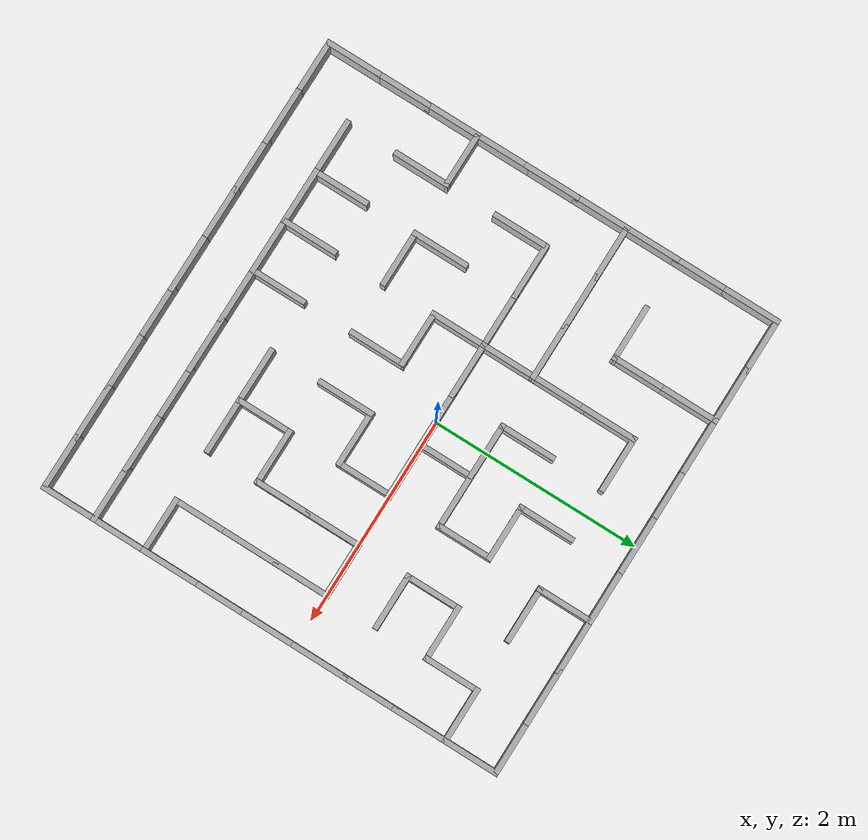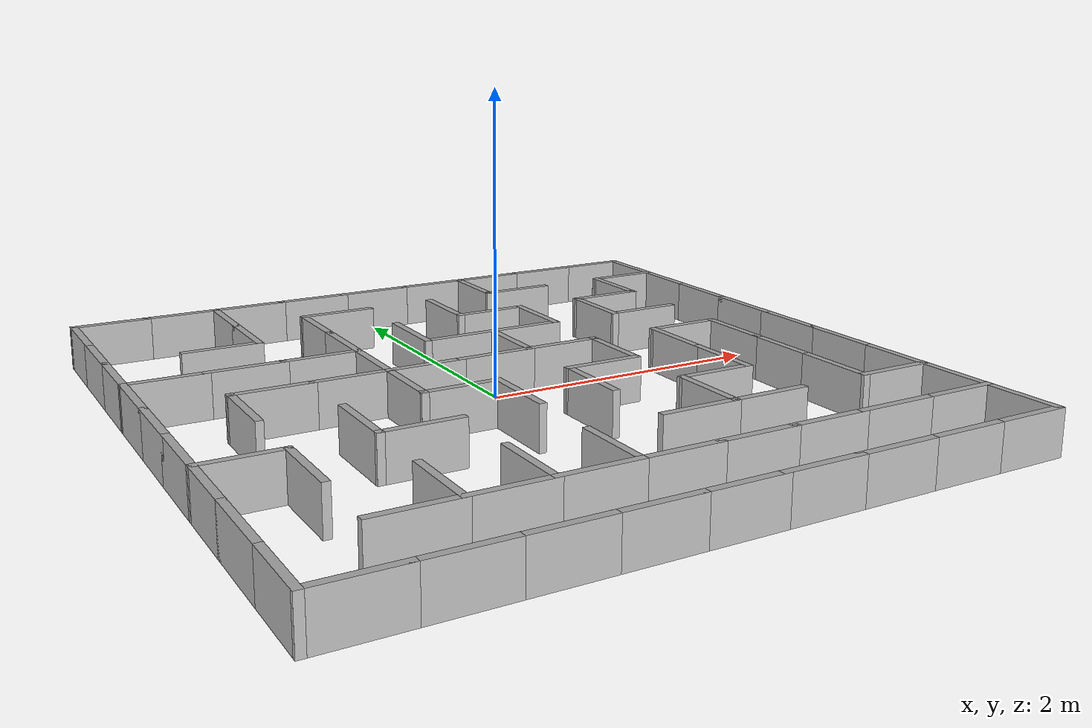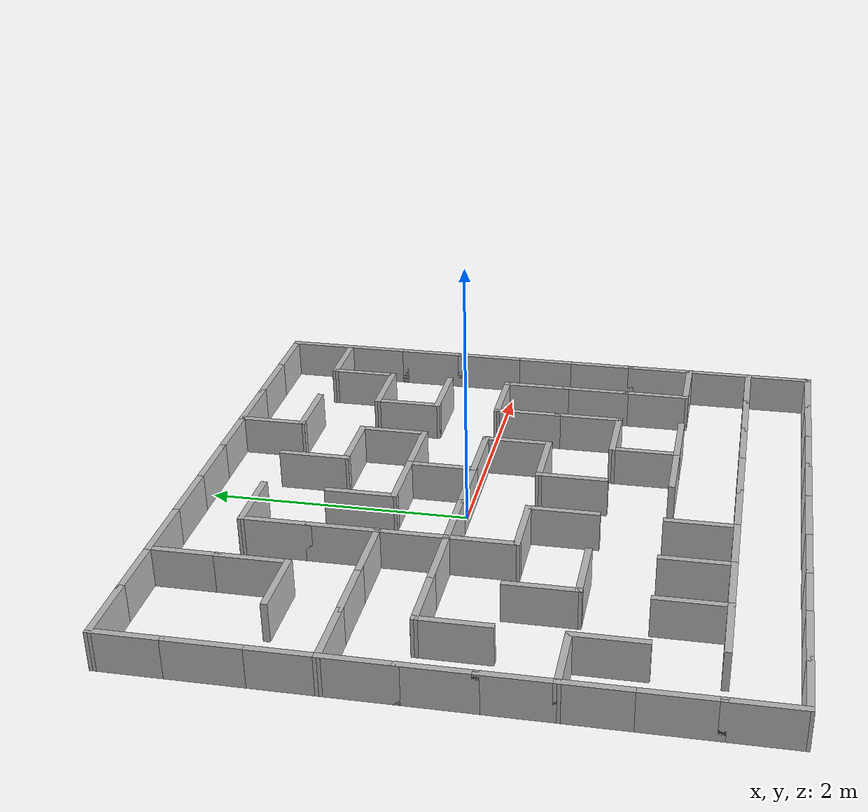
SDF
<?xml version='1.0'?>
<sdf version='1.4'>
	<model name="my_maze">
		<static>true</static>

		<link name='wall1'>
			<pose>-2.25 -2.25 0.15 0 0 0</pose>
			<inertial>
				<mass>1.0</mass>
			</inertial>
			<collision name='collision'>
				<geometry>
					<box>
						<size>0.05 0.55 0.3</size>
					</box>
				</geometry>
			</collision>
			<visual name='visual'>
				<geometry>
					<box>
						<size>0.05 0.55 0.3</size>
					</box>
				</geometry>
			</visual>
		</link>

		<link name='wall2'>
			<pose>-2 -2.5 0.15 0 0 1.57</pose>
			<inertial>
				<mass>1.0</mass>
			</inertial>
			<collision name='collision'>
				<geometry>
					<box>
						<size>0.05 0.55 0.3</size>
					</box>
				</geometry>
			</collision>
			<visual name='visual'>
				<geometry>
					<box>
						<size>0.05 0.55 0.3</size>
					</box>
				</geometry>
			</visual>
		</link>

		<link name='wall3'>
			<pose>-2.25 -1.75 0.15 0 0 0</pose>
			<inertial>
				<mass>1.0</mass>
			</inertial>
			<collision name='collision'>
				<geometry>
					<box>
						<size>0.05 0.55 0.3</size>
					</box>
				</geometry>
			</collision>
			<visual name='visual'>
				<geometry>
					<box>
						<size>0.05 0.55 0.3</size>
					</box>
				</geometry>
			</visual>
		</link>

		<link name='wall4'>
			<pose>-2.25 -1.25 0.15 0 0 0</pose>
			<inertial>
				<mass>1.0</mass>
			</inertial>
			<collision name='collision'>
				<geometry>
					<box>
						<size>0.05 0.55 0.3</size>
					</box>
				</geometry>
			</collision>
			<visual name='visual'>
				<geometry>
					<box>
						<size>0.05 0.55 0.3</size>
					</box>
				</geometry>
			</visual>
		</link>

		<link name='wall5'>
			<pose>-2.25 -0.75 0.15 0 0 0</pose>
			<inertial>
				<mass>1.0</mass>
			</inertial>
			<collision name='collision'>
				<geometry>
					<box>
						<size>0.05 0.55 0.3</size>
					</box>
				</geometry>
			</collision>
			<visual name='visual'>
				<geometry>
					<box>
						<size>0.05 0.55 0.3</size>
					</box>
				</geometry>
			</visual>
		</link>

		<link name='wall6'>
			<pose>-2 -1 0.15 0 0 1.57</pose>
			<inertial>
				<mass>1.0</mass>
			</inertial>
			<collision name='collision'>
				<geometry>
					<box>
						<size>0.05 0.55 0.3</size>
					</box>
				</geometry>
			</collision>
			<visual name='visual'>
				<geometry>
					<box>
						<size>0.05 0.55 0.3</size>
					</box>
				</geometry>
			</visual>
		</link>

		<link name='wall7'>
			<pose>-2.25 -0.25 0.15 0 0 0</pose>
			<inertial>
				<mass>1.0</mass>
			</inertial>
			<collision name='collision'>
				<geometry>
					<box>
						<size>0.05 0.55 0.3</size>
					</box>
				</geometry>
			</collision>
			<visual name='visual'>
				<geometry>
					<box>
						<size>0.05 0.55 0.3</size>
					</box>
				</geometry>
			</visual>
		</link>

		<link name='wall8'>
			<pose>-2.25 0.25 0.15 0 0 0</pose>
			<inertial>
				<mass>1.0</mass>
			</inertial>
			<collision name='collision'>
				<geometry>
					<box>
						<size>0.05 0.55 0.3</size>
					</box>
				</geometry>
			</collision>
			<visual name='visual'>
				<geometry>
					<box>
						<size>0.05 0.55 0.3</size>
					</box>
				</geometry>
			</visual>
		</link>

		<link name='wall9'>
			<pose>-2.25 0.75 0.15 0 0 0</pose>
			<inertial>
				<mass>1.0</mass>
			</inertial>
			<collision name='collision'>
				<geometry>
					<box>
						<size>0.05 0.55 0.3</size>
					</box>
				</geometry>
			</collision>
			<visual name='visual'>
				<geometry>
					<box>
						<size>0.05 0.55 0.3</size>
					</box>
				</geometry>
			</visual>
		</link>

		<link name='wall10'>
			<pose>-2 0.5 0.15 0 0 1.57</pose>
			<inertial>
				<mass>1.0</mass>
			</inertial>
			<collision name='collision'>
				<geometry>
					<box>
						<size>0.05 0.55 0.3</size>
					</box>
				</geometry>
			</collision>
			<visual name='visual'>
				<geometry>
					<box>
						<size>0.05 0.55 0.3</size>
					</box>
				</geometry>
			</visual>
		</link>

		<link name='wall11'>
			<pose>-2.25 1.25 0.15 0 0 0</pose>
			<inertial>
				<mass>1.0</mass>
			</inertial>
			<collision name='collision'>
				<geometry>
					<box>
						<size>0.05 0.55 0.3</size>
					</box>
				</geometry>
			</collision>
			<visual name='visual'>
				<geometry>
					<box>
						<size>0.05 0.55 0.3</size>
					</box>
				</geometry>
			</visual>
		</link>

		<link name='wall12'>
			<pose>-2.25 1.75 0.15 0 0 0</pose>
			<inertial>
				<mass>1.0</mass>
			</inertial>
			<collision name='collision'>
				<geometry>
					<box>
						<size>0.05 0.55 0.3</size>
					</box>
				</geometry>
			</collision>
			<visual name='visual'>
				<geometry>
					<box>
						<size>0.05 0.55 0.3</size>
					</box>
				</geometry>
			</visual>
		</link>

		<link name='wall13'>
			<pose>-2 2 0.15 0 0 1.57</pose>
			<inertial>
				<mass>1.0</mass>
			</inertial>
			<collision name='collision'>
				<geometry>
					<box>
						<size>0.05 0.55 0.3</size>
					</box>
				</geometry>
			</collision>
			<visual name='visual'>
				<geometry>
					<box>
						<size>0.05 0.55 0.3</size>
					</box>
				</geometry>
			</visual>
		</link>

		<link name='wall14'>
			<pose>-1.5 -2.5 0.15 0 0 1.57</pose>
			<inertial>
				<mass>1.0</mass>
			</inertial>
			<collision name='collision'>
				<geometry>
					<box>
						<size>0.05 0.55 0.3</size>
					</box>
				</geometry>
			</collision>
			<visual name='visual'>
				<geometry>
					<box>
						<size>0.05 0.55 0.3</size>
					</box>
				</geometry>
			</visual>
		</link>

		<link name='wall15'>
			<pose>-1.5 -2 0.15 0 0 1.57</pose>
			<inertial>
				<mass>1.0</mass>
			</inertial>
			<collision name='collision'>
				<geometry>
					<box>
						<size>0.05 0.55 0.3</size>
					</box>
				</geometry>
			</collision>
			<visual name='visual'>
				<geometry>
					<box>
						<size>0.05 0.55 0.3</size>
					</box>
				</geometry>
			</visual>
		</link>

		<link name='wall16'>
			<pose>-1.75 -1.25 0.15 0 0 0</pose>
			<inertial>
				<mass>1.0</mass>
			</inertial>
			<collision name='collision'>
				<geometry>
					<box>
						<size>0.05 0.55 0.3</size>
					</box>
				</geometry>
			</collision>
			<visual name='visual'>
				<geometry>
					<box>
						<size>0.05 0.55 0.3</size>
					</box>
				</geometry>
			</visual>
		</link>

		<link name='wall17'>
			<pose>-1.75 -0.25 0.15 0 0 0</pose>
			<inertial>
				<mass>1.0</mass>
			</inertial>
			<collision name='collision'>
				<geometry>
					<box>
						<size>0.05 0.55 0.3</size>
					</box>
				</geometry>
			</collision>
			<visual name='visual'>
				<geometry>
					<box>
						<size>0.05 0.55 0.3</size>
					</box>
				</geometry>
			</visual>
		</link>

		<link name='wall18'>
			<pose>-1.5 0 0.15 0 0 1.57</pose>
			<inertial>
				<mass>1.0</mass>
			</inertial>
			<collision name='collision'>
				<geometry>
					<box>
						<size>0.05 0.55 0.3</size>
					</box>
				</geometry>
			</collision>
			<visual name='visual'>
				<geometry>
					<box>
						<size>0.05 0.55 0.3</size>
					</box>
				</geometry>
			</visual>
		</link>

		<link name='wall19'>
			<pose>-1.5 0.5 0.15 0 0 1.57</pose>
			<inertial>
				<mass>1.0</mass>
			</inertial>
			<collision name='collision'>
				<geometry>
					<box>
						<size>0.05 0.55 0.3</size>
					</box>
				</geometry>
			</collision>
			<visual name='visual'>
				<geometry>
					<box>
						<size>0.05 0.55 0.3</size>
					</box>
				</geometry>
			</visual>
		</link>

		<link name='wall20'>
			<pose>-1.5 1 0.15 0 0 1.57</pose>
			<inertial>
				<mass>1.0</mass>
			</inertial>
			<collision name='collision'>
				<geometry>
					<box>
						<size>0.05 0.55 0.3</size>
					</box>
				</geometry>
			</collision>
			<visual name='visual'>
				<geometry>
					<box>
						<size>0.05 0.55 0.3</size>
					</box>
				</geometry>
			</visual>
		</link>

		<link name='wall21'>
			<pose>-1.5 2 0.15 0 0 1.57</pose>
			<inertial>
				<mass>1.0</mass>
			</inertial>
			<collision name='collision'>
				<geometry>
					<box>
						<size>0.05 0.55 0.3</size>
					</box>
				</geometry>
			</collision>
			<visual name='visual'>
				<geometry>
					<box>
						<size>0.05 0.55 0.3</size>
					</box>
				</geometry>
			</visual>
		</link>

		<link name='wall22'>
			<pose>-1 -2.5 0.15 0 0 1.57</pose>
			<inertial>
				<mass>1.0</mass>
			</inertial>
			<collision name='collision'>
				<geometry>
					<box>
						<size>0.05 0.55 0.3</size>
					</box>
				</geometry>
			</collision>
			<visual name='visual'>
				<geometry>
					<box>
						<size>0.05 0.55 0.3</size>
					</box>
				</geometry>
			</visual>
		</link>

		<link name='wall23'>
			<pose>-1.25 -1.75 0.15 0 0 0</pose>
			<inertial>
				<mass>1.0</mass>
			</inertial>
			<collision name='collision'>
				<geometry>
					<box>
						<size>0.05 0.55 0.3</size>
					</box>
				</geometry>
			</collision>
			<visual name='visual'>
				<geometry>
					<box>
						<size>0.05 0.55 0.3</size>
					</box>
				</geometry>
			</visual>
		</link>

		<link name='wall24'>
			<pose>-1 -2 0.15 0 0 1.57</pose>
			<inertial>
				<mass>1.0</mass>
			</inertial>
			<collision name='collision'>
				<geometry>
					<box>
						<size>0.05 0.55 0.3</size>
					</box>
				</geometry>
			</collision>
			<visual name='visual'>
				<geometry>
					<box>
						<size>0.05 0.55 0.3</size>
					</box>
				</geometry>
			</visual>
		</link>

		<link name='wall25'>
			<pose>-1.25 -0.75 0.15 0 0 0</pose>
			<inertial>
				<mass>1.0</mass>
			</inertial>
			<collision name='collision'>
				<geometry>
					<box>
						<size>0.05 0.55 0.3</size>
					</box>
				</geometry>
			</collision>
			<visual name='visual'>
				<geometry>
					<box>
						<size>0.05 0.55 0.3</size>
					</box>
				</geometry>
			</visual>
		</link>

		<link name='wall26'>
			<pose>-1 -1 0.15 0 0 1.57</pose>
			<inertial>
				<mass>1.0</mass>
			</inertial>
			<collision name='collision'>
				<geometry>
					<box>
						<size>0.05 0.55 0.3</size>
					</box>
				</geometry>
			</collision>
			<visual name='visual'>
				<geometry>
					<box>
						<size>0.05 0.55 0.3</size>
					</box>
				</geometry>
			</visual>
		</link>

		<link name='wall27'>
			<pose>-1 0 0.15 0 0 1.57</pose>
			<inertial>
				<mass>1.0</mass>
			</inertial>
			<collision name='collision'>
				<geometry>
					<box>
						<size>0.05 0.55 0.3</size>
					</box>
				</geometry>
			</collision>
			<visual name='visual'>
				<geometry>
					<box>
						<size>0.05 0.55 0.3</size>
					</box>
				</geometry>
			</visual>
		</link>

		<link name='wall28'>
			<pose>-1 0.5 0.15 0 0 1.57</pose>
			<inertial>
				<mass>1.0</mass>
			</inertial>
			<collision name='collision'>
				<geometry>
					<box>
						<size>0.05 0.55 0.3</size>
					</box>
				</geometry>
			</collision>
			<visual name='visual'>
				<geometry>
					<box>
						<size>0.05 0.55 0.3</size>
					</box>
				</geometry>
			</visual>
		</link>

		<link name='wall29'>
			<pose>-1.25 1.25 0.15 0 0 0</pose>
			<inertial>
				<mass>1.0</mass>
			</inertial>
			<collision name='collision'>
				<geometry>
					<box>
						<size>0.05 0.55 0.3</size>
					</box>
				</geometry>
			</collision>
			<visual name='visual'>
				<geometry>
					<box>
						<size>0.05 0.55 0.3</size>
					</box>
				</geometry>
			</visual>
		</link>

		<link name='wall30'>
			<pose>-1.25 1.75 0.15 0 0 0</pose>
			<inertial>
				<mass>1.0</mass>
			</inertial>
			<collision name='collision'>
				<geometry>
					<box>
						<size>0.05 0.55 0.3</size>
					</box>
				</geometry>
			</collision>
			<visual name='visual'>
				<geometry>
					<box>
						<size>0.05 0.55 0.3</size>
					</box>
				</geometry>
			</visual>
		</link>

		<link name='wall31'>
			<pose>-1 2 0.15 0 0 1.57</pose>
			<inertial>
				<mass>1.0</mass>
			</inertial>
			<collision name='collision'>
				<geometry>
					<box>
						<size>0.05 0.55 0.3</size>
					</box>
				</geometry>
			</collision>
			<visual name='visual'>
				<geometry>
					<box>
						<size>0.05 0.55 0.3</size>
					</box>
				</geometry>
			</visual>
		</link>

		<link name='wall32'>
			<pose>-0.5 -2.5 0.15 0 0 1.57</pose>
			<inertial>
				<mass>1.0</mass>
			</inertial>
			<collision name='collision'>
				<geometry>
					<box>
						<size>0.05 0.55 0.3</size>
					</box>
				</geometry>
			</collision>
			<visual name='visual'>
				<geometry>
					<box>
						<size>0.05 0.55 0.3</size>
					</box>
				</geometry>
			</visual>
		</link>

		<link name='wall33'>
			<pose>-0.75 -1.75 0.15 0 0 0</pose>
			<inertial>
				<mass>1.0</mass>
			</inertial>
			<collision name='collision'>
				<geometry>
					<box>
						<size>0.05 0.55 0.3</size>
					</box>
				</geometry>
			</collision>
			<visual name='visual'>
				<geometry>
					<box>
						<size>0.05 0.55 0.3</size>
					</box>
				</geometry>
			</visual>
		</link>

		<link name='wall34'>
			<pose>-0.5 -2 0.15 0 0 1.57</pose>
			<inertial>
				<mass>1.0</mass>
			</inertial>
			<collision name='collision'>
				<geometry>
					<box>
						<size>0.05 0.55 0.3</size>
					</box>
				</geometry>
			</collision>
			<visual name='visual'>
				<geometry>
					<box>
						<size>0.05 0.55 0.3</size>
					</box>
				</geometry>
			</visual>
		</link>

		<link name='wall35'>
			<pose>-0.75 -0.25 0.15 0 0 0</pose>
			<inertial>
				<mass>1.0</mass>
			</inertial>
			<collision name='collision'>
				<geometry>
					<box>
						<size>0.05 0.55 0.3</size>
					</box>
				</geometry>
			</collision>
			<visual name='visual'>
				<geometry>
					<box>
						<size>0.05 0.55 0.3</size>
					</box>
				</geometry>
			</visual>
		</link>

		<link name='wall36'>
			<pose>-0.5 -0.5 0.15 0 0 1.57</pose>
			<inertial>
				<mass>1.0</mass>
			</inertial>
			<collision name='collision'>
				<geometry>
					<box>
						<size>0.05 0.55 0.3</size>
					</box>
				</geometry>
			</collision>
			<visual name='visual'>
				<geometry>
					<box>
						<size>0.05 0.55 0.3</size>
					</box>
				</geometry>
			</visual>
		</link>

		<link name='wall37'>
			<pose>-0.75 0.25 0.15 0 0 0</pose>
			<inertial>
				<mass>1.0</mass>
			</inertial>
			<collision name='collision'>
				<geometry>
					<box>
						<size>0.05 0.55 0.3</size>
					</box>
				</geometry>
			</collision>
			<visual name='visual'>
				<geometry>
					<box>
						<size>0.05 0.55 0.3</size>
					</box>
				</geometry>
			</visual>
		</link>

		<link name='wall38'>
			<pose>-0.5 0 0.15 0 0 1.57</pose>
			<inertial>
				<mass>1.0</mass>
			</inertial>
			<collision name='collision'>
				<geometry>
					<box>
						<size>0.05 0.55 0.3</size>
					</box>
				</geometry>
			</collision>
			<visual name='visual'>
				<geometry>
					<box>
						<size>0.05 0.55 0.3</size>
					</box>
				</geometry>
			</visual>
		</link>

		<link name='wall39'>
			<pose>-0.75 0.75 0.15 0 0 0</pose>
			<inertial>
				<mass>1.0</mass>
			</inertial>
			<collision name='collision'>
				<geometry>
					<box>
						<size>0.05 0.55 0.3</size>
					</box>
				</geometry>
			</collision>
			<visual name='visual'>
				<geometry>
					<box>
						<size>0.05 0.55 0.3</size>
					</box>
				</geometry>
			</visual>
		</link>

		<link name='wall40'>
			<pose>-0.75 1.25 0.15 0 0 0</pose>
			<inertial>
				<mass>1.0</mass>
			</inertial>
			<collision name='collision'>
				<geometry>
					<box>
						<size>0.05 0.55 0.3</size>
					</box>
				</geometry>
			</collision>
			<visual name='visual'>
				<geometry>
					<box>
						<size>0.05 0.55 0.3</size>
					</box>
				</geometry>
			</visual>
		</link>

		<link name='wall41'>
			<pose>-0.5 1.5 0.15 0 0 1.57</pose>
			<inertial>
				<mass>1.0</mass>
			</inertial>
			<collision name='collision'>
				<geometry>
					<box>
						<size>0.05 0.55 0.3</size>
					</box>
				</geometry>
			</collision>
			<visual name='visual'>
				<geometry>
					<box>
						<size>0.05 0.55 0.3</size>
					</box>
				</geometry>
			</visual>
		</link>

		<link name='wall42'>
			<pose>-0.5 2 0.15 0 0 1.57</pose>
			<inertial>
				<mass>1.0</mass>
			</inertial>
			<collision name='collision'>
				<geometry>
					<box>
						<size>0.05 0.55 0.3</size>
					</box>
				</geometry>
			</collision>
			<visual name='visual'>
				<geometry>
					<box>
						<size>0.05 0.55 0.3</size>
					</box>
				</geometry>
			</visual>
		</link>

		<link name='wall43'>
			<pose>0 -2.5 0.15 0 0 1.57</pose>
			<inertial>
				<mass>1.0</mass>
			</inertial>
			<collision name='collision'>
				<geometry>
					<box>
						<size>0.05 0.55 0.3</size>
					</box>
				</geometry>
			</collision>
			<visual name='visual'>
				<geometry>
					<box>
						<size>0.05 0.55 0.3</size>
					</box>
				</geometry>
			</visual>
		</link>

		<link name='wall44'>
			<pose>-0.25 -1.75 0.15 0 0 0</pose>
			<inertial>
				<mass>1.0</mass>
			</inertial>
			<collision name='collision'>
				<geometry>
					<box>
						<size>0.05 0.55 0.3</size>
					</box>
				</geometry>
			</collision>
			<visual name='visual'>
				<geometry>
					<box>
						<size>0.05 0.55 0.3</size>
					</box>
				</geometry>
			</visual>
		</link>

		<link name='wall45'>
			<pose>0 -2 0.15 0 0 1.57</pose>
			<inertial>
				<mass>1.0</mass>
			</inertial>
			<collision name='collision'>
				<geometry>
					<box>
						<size>0.05 0.55 0.3</size>
					</box>
				</geometry>
			</collision>
			<visual name='visual'>
				<geometry>
					<box>
						<size>0.05 0.55 0.3</size>
					</box>
				</geometry>
			</visual>
		</link>

		<link name='wall46'>
			<pose>-0.25 -0.75 0.15 0 0 0</pose>
			<inertial>
				<mass>1.0</mass>
			</inertial>
			<collision name='collision'>
				<geometry>
					<box>
						<size>0.05 0.55 0.3</size>
					</box>
				</geometry>
			</collision>
			<visual name='visual'>
				<geometry>
					<box>
						<size>0.05 0.55 0.3</size>
					</box>
				</geometry>
			</visual>
		</link>

		<link name='wall47'>
			<pose>0 0 0.15 0 0 1.57</pose>
			<inertial>
				<mass>1.0</mass>
			</inertial>
			<collision name='collision'>
				<geometry>
					<box>
						<size>0.05 0.55 0.3</size>
					</box>
				</geometry>
			</collision>
			<visual name='visual'>
				<geometry>
					<box>
						<size>0.05 0.55 0.3</size>
					</box>
				</geometry>
			</visual>
		</link>

		<link name='wall48'>
			<pose>-0.25 0.75 0.15 0 0 0</pose>
			<inertial>
				<mass>1.0</mass>
			</inertial>
			<collision name='collision'>
				<geometry>
					<box>
						<size>0.05 0.55 0.3</size>
					</box>
				</geometry>
			</collision>
			<visual name='visual'>
				<geometry>
					<box>
						<size>0.05 0.55 0.3</size>
					</box>
				</geometry>
			</visual>
		</link>

		<link name='wall49'>
			<pose>0 0.5 0.15 0 0 1.57</pose>
			<inertial>
				<mass>1.0</mass>
			</inertial>
			<collision name='collision'>
				<geometry>
					<box>
						<size>0.05 0.55 0.3</size>
					</box>
				</geometry>
			</collision>
			<visual name='visual'>
				<geometry>
					<box>
						<size>0.05 0.55 0.3</size>
					</box>
				</geometry>
			</visual>
		</link>

		<link name='wall50'>
			<pose>0 2 0.15 0 0 1.57</pose>
			<inertial>
				<mass>1.0</mass>
			</inertial>
			<collision name='collision'>
				<geometry>
					<box>
						<size>0.05 0.55 0.3</size>
					</box>
				</geometry>
			</collision>
			<visual name='visual'>
				<geometry>
					<box>
						<size>0.05 0.55 0.3</size>
					</box>
				</geometry>
			</visual>
		</link>

		<link name='wall51'>
			<pose>0.5 -2.5 0.15 0 0 1.57</pose>
			<inertial>
				<mass>1.0</mass>
			</inertial>
			<collision name='collision'>
				<geometry>
					<box>
						<size>0.05 0.55 0.3</size>
					</box>
				</geometry>
			</collision>
			<visual name='visual'>
				<geometry>
					<box>
						<size>0.05 0.55 0.3</size>
					</box>
				</geometry>
			</visual>
		</link>

		<link name='wall52'>
			<pose>0.5 -2 0.15 0 0 1.57</pose>
			<inertial>
				<mass>1.0</mass>
			</inertial>
			<collision name='collision'>
				<geometry>
					<box>
						<size>0.05 0.55 0.3</size>
					</box>
				</geometry>
			</collision>
			<visual name='visual'>
				<geometry>
					<box>
						<size>0.05 0.55 0.3</size>
					</box>
				</geometry>
			</visual>
		</link>

		<link name='wall53'>
			<pose>0.5 -1.5 0.15 0 0 1.57</pose>
			<inertial>
				<mass>1.0</mass>
			</inertial>
			<collision name='collision'>
				<geometry>
					<box>
						<size>0.05 0.55 0.3</size>
					</box>
				</geometry>
			</collision>
			<visual name='visual'>
				<geometry>
					<box>
						<size>0.05 0.55 0.3</size>
					</box>
				</geometry>
			</visual>
		</link>

		<link name='wall54'>
			<pose>0.25 -0.75 0.15 0 0 0</pose>
			<inertial>
				<mass>1.0</mass>
			</inertial>
			<collision name='collision'>
				<geometry>
					<box>
						<size>0.05 0.55 0.3</size>
					</box>
				</geometry>
			</collision>
			<visual name='visual'>
				<geometry>
					<box>
						<size>0.05 0.55 0.3</size>
					</box>
				</geometry>
			</visual>
		</link>

		<link name='wall55'>
			<pose>0.5 -0.5 0.15 0 0 1.57</pose>
			<inertial>
				<mass>1.0</mass>
			</inertial>
			<collision name='collision'>
				<geometry>
					<box>
						<size>0.05 0.55 0.3</size>
					</box>
				</geometry>
			</collision>
			<visual name='visual'>
				<geometry>
					<box>
						<size>0.05 0.55 0.3</size>
					</box>
				</geometry>
			</visual>
		</link>

		<link name='wall56'>
			<pose>0.25 0.25 0.15 0 0 0</pose>
			<inertial>
				<mass>1.0</mass>
			</inertial>
			<collision name='collision'>
				<geometry>
					<box>
						<size>0.05 0.55 0.3</size>
					</box>
				</geometry>
			</collision>
			<visual name='visual'>
				<geometry>
					<box>
						<size>0.05 0.55 0.3</size>
					</box>
				</geometry>
			</visual>
		</link>

		<link name='wall57'>
			<pose>0.5 0 0.15 0 0 1.57</pose>
			<inertial>
				<mass>1.0</mass>
			</inertial>
			<collision name='collision'>
				<geometry>
					<box>
						<size>0.05 0.55 0.3</size>
					</box>
				</geometry>
			</collision>
			<visual name='visual'>
				<geometry>
					<box>
						<size>0.05 0.55 0.3</size>
					</box>
				</geometry>
			</visual>
		</link>

		<link name='wall58'>
			<pose>0.5 0.5 0.15 0 0 1.57</pose>
			<inertial>
				<mass>1.0</mass>
			</inertial>
			<collision name='collision'>
				<geometry>
					<box>
						<size>0.05 0.55 0.3</size>
					</box>
				</geometry>
			</collision>
			<visual name='visual'>
				<geometry>
					<box>
						<size>0.05 0.55 0.3</size>
					</box>
				</geometry>
			</visual>
		</link>

		<link name='wall59'>
			<pose>0.25 1.25 0.15 0 0 0</pose>
			<inertial>
				<mass>1.0</mass>
			</inertial>
			<collision name='collision'>
				<geometry>
					<box>
						<size>0.05 0.55 0.3</size>
					</box>
				</geometry>
			</collision>
			<visual name='visual'>
				<geometry>
					<box>
						<size>0.05 0.55 0.3</size>
					</box>
				</geometry>
			</visual>
		</link>

		<link name='wall60'>
			<pose>0.5 1 0.15 0 0 1.57</pose>
			<inertial>
				<mass>1.0</mass>
			</inertial>
			<collision name='collision'>
				<geometry>
					<box>
						<size>0.05 0.55 0.3</size>
					</box>
				</geometry>
			</collision>
			<visual name='visual'>
				<geometry>
					<box>
						<size>0.05 0.55 0.3</size>
					</box>
				</geometry>
			</visual>
		</link>

		<link name='wall61'>
			<pose>0.5 2 0.15 0 0 1.57</pose>
			<inertial>
				<mass>1.0</mass>
			</inertial>
			<collision name='collision'>
				<geometry>
					<box>
						<size>0.05 0.55 0.3</size>
					</box>
				</geometry>
			</collision>
			<visual name='visual'>
				<geometry>
					<box>
						<size>0.05 0.55 0.3</size>
					</box>
				</geometry>
			</visual>
		</link>

		<link name='wall62'>
			<pose>1 -2.5 0.15 0 0 1.57</pose>
			<inertial>
				<mass>1.0</mass>
			</inertial>
			<collision name='collision'>
				<geometry>
					<box>
						<size>0.05 0.55 0.3</size>
					</box>
				</geometry>
			</collision>
			<visual name='visual'>
				<geometry>
					<box>
						<size>0.05 0.55 0.3</size>
					</box>
				</geometry>
			</visual>
		</link>

		<link name='wall63'>
			<pose>1 -2 0.15 0 0 1.57</pose>
			<inertial>
				<mass>1.0</mass>
			</inertial>
			<collision name='collision'>
				<geometry>
					<box>
						<size>0.05 0.55 0.3</size>
					</box>
				</geometry>
			</collision>
			<visual name='visual'>
				<geometry>
					<box>
						<size>0.05 0.55 0.3</size>
					</box>
				</geometry>
			</visual>
		</link>

		<link name='wall64'>
			<pose>0.75 -1.25 0.15 0 0 0</pose>
			<inertial>
				<mass>1.0</mass>
			</inertial>
			<collision name='collision'>
				<geometry>
					<box>
						<size>0.05 0.55 0.3</size>
					</box>
				</geometry>
			</collision>
			<visual name='visual'>
				<geometry>
					<box>
						<size>0.05 0.55 0.3</size>
					</box>
				</geometry>
			</visual>
		</link>

		<link name='wall65'>
			<pose>1 -1.5 0.15 0 0 1.57</pose>
			<inertial>
				<mass>1.0</mass>
			</inertial>
			<collision name='collision'>
				<geometry>
					<box>
						<size>0.05 0.55 0.3</size>
					</box>
				</geometry>
			</collision>
			<visual name='visual'>
				<geometry>
					<box>
						<size>0.05 0.55 0.3</size>
					</box>
				</geometry>
			</visual>
		</link>

		<link name='wall66'>
			<pose>1 -1 0.15 0 0 1.57</pose>
			<inertial>
				<mass>1.0</mass>
			</inertial>
			<collision name='collision'>
				<geometry>
					<box>
						<size>0.05 0.55 0.3</size>
					</box>
				</geometry>
			</collision>
			<visual name='visual'>
				<geometry>
					<box>
						<size>0.05 0.55 0.3</size>
					</box>
				</geometry>
			</visual>
		</link>

		<link name='wall67'>
			<pose>0.75 -0.25 0.15 0 0 0</pose>
			<inertial>
				<mass>1.0</mass>
			</inertial>
			<collision name='collision'>
				<geometry>
					<box>
						<size>0.05 0.55 0.3</size>
					</box>
				</geometry>
			</collision>
			<visual name='visual'>
				<geometry>
					<box>
						<size>0.05 0.55 0.3</size>
					</box>
				</geometry>
			</visual>
		</link>

		<link name='wall68'>
			<pose>0.75 0.75 0.15 0 0 0</pose>
			<inertial>
				<mass>1.0</mass>
			</inertial>
			<collision name='collision'>
				<geometry>
					<box>
						<size>0.05 0.55 0.3</size>
					</box>
				</geometry>
			</collision>
			<visual name='visual'>
				<geometry>
					<box>
						<size>0.05 0.55 0.3</size>
					</box>
				</geometry>
			</visual>
		</link>

		<link name='wall69'>
			<pose>0.75 1.75 0.15 0 0 0</pose>
			<inertial>
				<mass>1.0</mass>
			</inertial>
			<collision name='collision'>
				<geometry>
					<box>
						<size>0.05 0.55 0.3</size>
					</box>
				</geometry>
			</collision>
			<visual name='visual'>
				<geometry>
					<box>
						<size>0.05 0.55 0.3</size>
					</box>
				</geometry>
			</visual>
		</link>

		<link name='wall70'>
			<pose>1 1.5 0.15 0 0 1.57</pose>
			<inertial>
				<mass>1.0</mass>
			</inertial>
			<collision name='collision'>
				<geometry>
					<box>
						<size>0.05 0.55 0.3</size>
					</box>
				</geometry>
			</collision>
			<visual name='visual'>
				<geometry>
					<box>
						<size>0.05 0.55 0.3</size>
					</box>
				</geometry>
			</visual>
		</link>

		<link name='wall71'>
			<pose>1 2 0.15 0 0 1.57</pose>
			<inertial>
				<mass>1.0</mass>
			</inertial>
			<collision name='collision'>
				<geometry>
					<box>
						<size>0.05 0.55 0.3</size>
					</box>
				</geometry>
			</collision>
			<visual name='visual'>
				<geometry>
					<box>
						<size>0.05 0.55 0.3</size>
					</box>
				</geometry>
			</visual>
		</link>

		<link name='wall72'>
			<pose>1.5 -2.5 0.15 0 0 1.57</pose>
			<inertial>
				<mass>1.0</mass>
			</inertial>
			<collision name='collision'>
				<geometry>
					<box>
						<size>0.05 0.55 0.3</size>
					</box>
				</geometry>
			</collision>
			<visual name='visual'>
				<geometry>
					<box>
						<size>0.05 0.55 0.3</size>
					</box>
				</geometry>
			</visual>
		</link>

		<link name='wall73'>
			<pose>1.5 -2 0.15 0 0 1.57</pose>
			<inertial>
				<mass>1.0</mass>
			</inertial>
			<collision name='collision'>
				<geometry>
					<box>
						<size>0.05 0.55 0.3</size>
					</box>
				</geometry>
			</collision>
			<visual name='visual'>
				<geometry>
					<box>
						<size>0.05 0.55 0.3</size>
					</box>
				</geometry>
			</visual>
		</link>

		<link name='wall74'>
			<pose>1.25 -0.75 0.15 0 0 0</pose>
			<inertial>
				<mass>1.0</mass>
			</inertial>
			<collision name='collision'>
				<geometry>
					<box>
						<size>0.05 0.55 0.3</size>
					</box>
				</geometry>
			</collision>
			<visual name='visual'>
				<geometry>
					<box>
						<size>0.05 0.55 0.3</size>
					</box>
				</geometry>
			</visual>
		</link>

		<link name='wall75'>
			<pose>1.25 -0.25 0.15 0 0 0</pose>
			<inertial>
				<mass>1.0</mass>
			</inertial>
			<collision name='collision'>
				<geometry>
					<box>
						<size>0.05 0.55 0.3</size>
					</box>
				</geometry>
			</collision>
			<visual name='visual'>
				<geometry>
					<box>
						<size>0.05 0.55 0.3</size>
					</box>
				</geometry>
			</visual>
		</link>

		<link name='wall76'>
			<pose>1.5 0 0.15 0 0 1.57</pose>
			<inertial>
				<mass>1.0</mass>
			</inertial>
			<collision name='collision'>
				<geometry>
					<box>
						<size>0.05 0.55 0.3</size>
					</box>
				</geometry>
			</collision>
			<visual name='visual'>
				<geometry>
					<box>
						<size>0.05 0.55 0.3</size>
					</box>
				</geometry>
			</visual>
		</link>

		<link name='wall77'>
			<pose>1.25 0.75 0.15 0 0 0</pose>
			<inertial>
				<mass>1.0</mass>
			</inertial>
			<collision name='collision'>
				<geometry>
					<box>
						<size>0.05 0.55 0.3</size>
					</box>
				</geometry>
			</collision>
			<visual name='visual'>
				<geometry>
					<box>
						<size>0.05 0.55 0.3</size>
					</box>
				</geometry>
			</visual>
		</link>

		<link name='wall78'>
			<pose>1.5 0.5 0.15 0 0 1.57</pose>
			<inertial>
				<mass>1.0</mass>
			</inertial>
			<collision name='collision'>
				<geometry>
					<box>
						<size>0.05 0.55 0.3</size>
					</box>
				</geometry>
			</collision>
			<visual name='visual'>
				<geometry>
					<box>
						<size>0.05 0.55 0.3</size>
					</box>
				</geometry>
			</visual>
		</link>

		<link name='wall79'>
			<pose>1.5 1 0.15 0 0 1.57</pose>
			<inertial>
				<mass>1.0</mass>
			</inertial>
			<collision name='collision'>
				<geometry>
					<box>
						<size>0.05 0.55 0.3</size>
					</box>
				</geometry>
			</collision>
			<visual name='visual'>
				<geometry>
					<box>
						<size>0.05 0.55 0.3</size>
					</box>
				</geometry>
			</visual>
		</link>

		<link name='wall80'>
			<pose>1.5 2 0.15 0 0 1.57</pose>
			<inertial>
				<mass>1.0</mass>
			</inertial>
			<collision name='collision'>
				<geometry>
					<box>
						<size>0.05 0.55 0.3</size>
					</box>
				</geometry>
			</collision>
			<visual name='visual'>
				<geometry>
					<box>
						<size>0.05 0.55 0.3</size>
					</box>
				</geometry>
			</visual>
		</link>

		<link name='wall81'>
			<pose>2 -2.5 0.15 0 0 1.57</pose>
			<inertial>
				<mass>1.0</mass>
			</inertial>
			<collision name='collision'>
				<geometry>
					<box>
						<size>0.05 0.55 0.3</size>
					</box>
				</geometry>
			</collision>
			<visual name='visual'>
				<geometry>
					<box>
						<size>0.05 0.55 0.3</size>
					</box>
				</geometry>
			</visual>
		</link>

		<link name='wall82'>
			<pose>2.25 -2.25 0.15 0 0 0</pose>
			<inertial>
				<mass>1.0</mass>
			</inertial>
			<collision name='collision'>
				<geometry>
					<box>
						<size>0.05 0.55 0.3</size>
					</box>
				</geometry>
			</collision>
			<visual name='visual'>
				<geometry>
					<box>
						<size>0.05 0.55 0.3</size>
					</box>
				</geometry>
			</visual>
		</link>

		<link name='wall83'>
			<pose>2 -2 0.15 0 0 1.57</pose>
			<inertial>
				<mass>1.0</mass>
			</inertial>
			<collision name='collision'>
				<geometry>
					<box>
						<size>0.05 0.55 0.3</size>
					</box>
				</geometry>
			</collision>
			<visual name='visual'>
				<geometry>
					<box>
						<size>0.05 0.55 0.3</size>
					</box>
				</geometry>
			</visual>
		</link>

		<link name='wall84'>
			<pose>2.25 -1.75 0.15 0 0 0</pose>
			<inertial>
				<mass>1.0</mass>
			</inertial>
			<collision name='collision'>
				<geometry>
					<box>
						<size>0.05 0.55 0.3</size>
					</box>
				</geometry>
			</collision>
			<visual name='visual'>
				<geometry>
					<box>
						<size>0.05 0.55 0.3</size>
					</box>
				</geometry>
			</visual>
		</link>

		<link name='wall85'>
			<pose>1.75 -1.25 0.15 0 0 0</pose>
			<inertial>
				<mass>1.0</mass>
			</inertial>
			<collision name='collision'>
				<geometry>
					<box>
						<size>0.05 0.55 0.3</size>
					</box>
				</geometry>
			</collision>
			<visual name='visual'>
				<geometry>
					<box>
						<size>0.05 0.55 0.3</size>
					</box>
				</geometry>
			</visual>
		</link>

		<link name='wall86'>
			<pose>2 -1.5 0.15 0 0 1.57</pose>
			<inertial>
				<mass>1.0</mass>
			</inertial>
			<collision name='collision'>
				<geometry>
					<box>
						<size>0.05 0.55 0.3</size>
					</box>
				</geometry>
			</collision>
			<visual name='visual'>
				<geometry>
					<box>
						<size>0.05 0.55 0.3</size>
					</box>
				</geometry>
			</visual>
		</link>

		<link name='wall87'>
			<pose>2.25 -1.25 0.15 0 0 0</pose>
			<inertial>
				<mass>1.0</mass>
			</inertial>
			<collision name='collision'>
				<geometry>
					<box>
						<size>0.05 0.55 0.3</size>
					</box>
				</geometry>
			</collision>
			<visual name='visual'>
				<geometry>
					<box>
						<size>0.05 0.55 0.3</size>
					</box>
				</geometry>
			</visual>
		</link>

		<link name='wall88'>
			<pose>1.75 -0.75 0.15 0 0 0</pose>
			<inertial>
				<mass>1.0</mass>
			</inertial>
			<collision name='collision'>
				<geometry>
					<box>
						<size>0.05 0.55 0.3</size>
					</box>
				</geometry>
			</collision>
			<visual name='visual'>
				<geometry>
					<box>
						<size>0.05 0.55 0.3</size>
					</box>
				</geometry>
			</visual>
		</link>

		<link name='wall89'>
			<pose>2.25 -0.75 0.15 0 0 0</pose>
			<inertial>
				<mass>1.0</mass>
			</inertial>
			<collision name='collision'>
				<geometry>
					<box>
						<size>0.05 0.55 0.3</size>
					</box>
				</geometry>
			</collision>
			<visual name='visual'>
				<geometry>
					<box>
						<size>0.05 0.55 0.3</size>
					</box>
				</geometry>
			</visual>
		</link>

		<link name='wall90'>
			<pose>1.75 -0.25 0.15 0 0 0</pose>
			<inertial>
				<mass>1.0</mass>
			</inertial>
			<collision name='collision'>
				<geometry>
					<box>
						<size>0.05 0.55 0.3</size>
					</box>
				</geometry>
			</collision>
			<visual name='visual'>
				<geometry>
					<box>
						<size>0.05 0.55 0.3</size>
					</box>
				</geometry>
			</visual>
		</link>

		<link name='wall91'>
			<pose>2.25 -0.25 0.15 0 0 0</pose>
			<inertial>
				<mass>1.0</mass>
			</inertial>
			<collision name='collision'>
				<geometry>
					<box>
						<size>0.05 0.55 0.3</size>
					</box>
				</geometry>
			</collision>
			<visual name='visual'>
				<geometry>
					<box>
						<size>0.05 0.55 0.3</size>
					</box>
				</geometry>
			</visual>
		</link>

		<link name='wall92'>
			<pose>2.25 0.25 0.15 0 0 0</pose>
			<inertial>
				<mass>1.0</mass>
			</inertial>
			<collision name='collision'>
				<geometry>
					<box>
						<size>0.05 0.55 0.3</size>
					</box>
				</geometry>
			</collision>
			<visual name='visual'>
				<geometry>
					<box>
						<size>0.05 0.55 0.3</size>
					</box>
				</geometry>
			</visual>
		</link>

		<link name='wall93'>
			<pose>2.25 0.75 0.15 0 0 0</pose>
			<inertial>
				<mass>1.0</mass>
			</inertial>
			<collision name='collision'>
				<geometry>
					<box>
						<size>0.05 0.55 0.3</size>
					</box>
				</geometry>
			</collision>
			<visual name='visual'>
				<geometry>
					<box>
						<size>0.05 0.55 0.3</size>
					</box>
				</geometry>
			</visual>
		</link>

		<link name='wall94'>
			<pose>1.75 1.25 0.15 0 0 0</pose>
			<inertial>
				<mass>1.0</mass>
			</inertial>
			<collision name='collision'>
				<geometry>
					<box>
						<size>0.05 0.55 0.3</size>
					</box>
				</geometry>
			</collision>
			<visual name='visual'>
				<geometry>
					<box>
						<size>0.05 0.55 0.3</size>
					</box>
				</geometry>
			</visual>
		</link>

		<link name='wall95'>
			<pose>2.25 1.25 0.15 0 0 0</pose>
			<inertial>
				<mass>1.0</mass>
			</inertial>
			<collision name='collision'>
				<geometry>
					<box>
						<size>0.05 0.55 0.3</size>
					</box>
				</geometry>
			</collision>
			<visual name='visual'>
				<geometry>
					<box>
						<size>0.05 0.55 0.3</size>
					</box>
				</geometry>
			</visual>
		</link>

		<link name='wall96'>
			<pose>2 1.5 0.15 0 0 1.57</pose>
			<inertial>
				<mass>1.0</mass>
			</inertial>
			<collision name='collision'>
				<geometry>
					<box>
						<size>0.05 0.55 0.3</size>
					</box>
				</geometry>
			</collision>
			<visual name='visual'>
				<geometry>
					<box>
						<size>0.05 0.55 0.3</size>
					</box>
				</geometry>
			</visual>
		</link>

		<link name='wall97'>
			<pose>2.25 1.75 0.15 0 0 0</pose>
			<inertial>
				<mass>1.0</mass>
			</inertial>
			<collision name='collision'>
				<geometry>
					<box>
						<size>0.05 0.55 0.3</size>
					</box>
				</geometry>
			</collision>
			<visual name='visual'>
				<geometry>
					<box>
						<size>0.05 0.55 0.3</size>
					</box>
				</geometry>
			</visual>
		</link>

		<link name='wall98'>
			<pose>2 2 0.15 0 0 1.57</pose>
			<inertial>
				<mass>1.0</mass>
			</inertial>
			<collision name='collision'>
				<geometry>
					<box>
						<size>0.05 0.55 0.3</size>
					</box>
				</geometry>
			</collision>
			<visual name='visual'>
				<geometry>
					<box>
						<size>0.05 0.55 0.3</size>
					</box>
				</geometry>
			</visual>
		</link>

	</model>
</sdf>
